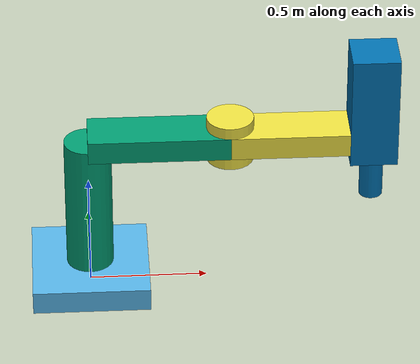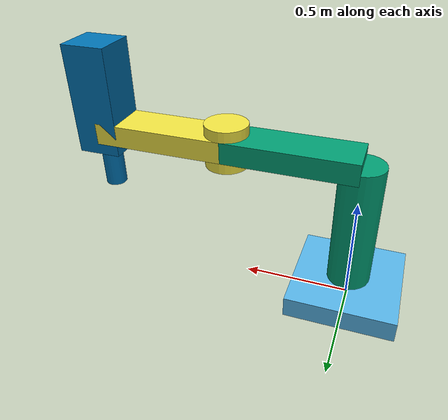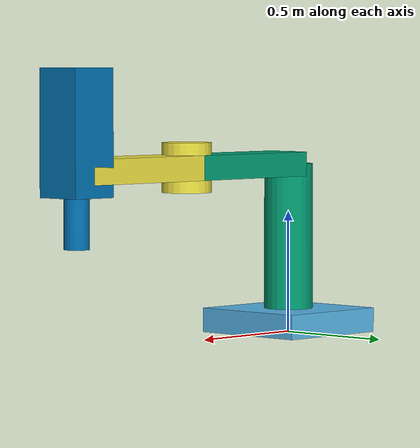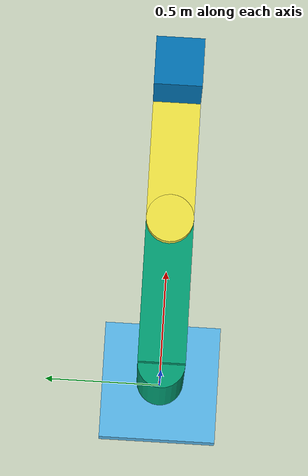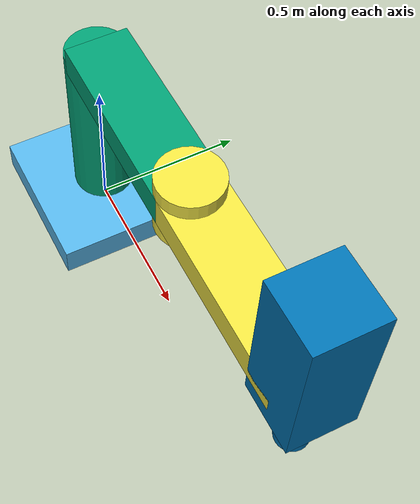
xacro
<?xml version="1.0"?>
<robot name="scara_robot" xmlns:xacro="http://www.ros.org/wiki/xacro">

    <xacro:property name="d1" value=".6" />
    <xacro:property name="a1" value=".6" />
    <xacro:property name="a2" value=".6" />
    <xacro:property name="d3" value=".3" />

    <xacro:property name="link3_limit" value=".3" />
    <xacro:property name="ee_r" value=".05" />
    <xacro:property name="ee_l" value="${d3}" />

    <xacro:property name="cyl_joint_r" value=".1" />
    <xacro:property name="cyl_joint_l" value=".2" />

    <xacro:property name="link_r" value=".1" />

    <xacro:property name="prismatic_link_a" value=".2" />

    <xacro:property name="base_link_l" value=".5" />
    <xacro:property name="base_link_w" value=".5" />
    <xacro:property name="base_link_h" value="0.1" />

    <xacro:property name="link1_l" value="${d1}" />
    <xacro:property name="link1_r" value="${link_r}" />
    <xacro:property name="link1_theta" value="0" />
    <xacro:property name="link1_d" value="${base_link_h}" />
    <xacro:property name="link1_a" value="0" />
    <xacro:property name="link1_alpha" value="0" />

    <xacro:property name="link1_arm_l" value="${a1}" />
    <xacro:property name="link1_arm_w" value="${link_r *2}" />
    <xacro:property name="link1_arm_h" value="${link_r}" />

    <xacro:property name="link2_l" value="${cyl_joint_l}" />
    <xacro:property name="link2_r" value="${cyl_joint_r}" />
    <xacro:property name="link2_theta" value="0" />
    <xacro:property name="link2_d" value="0" />
    <xacro:property name="link2_a" value="${a1}" />
    <xacro:property name="link2_alpha" value="0" />

    <xacro:property name="link2_arm_l" value="${a2}" />
    <xacro:property name="link2_arm_w" value="${link_r *2}" />
    <xacro:property name="link2_arm_h" value="${link_r}" />

    <xacro:property name="link3_arm_l" value="${prismatic_link_a}" />
    <xacro:property name="link3_arm_w" value="${prismatic_link_a}" />
    <xacro:property name="link3_arm_h" value="${prismatic_link_a + link3_limit}" />
    <xacro:property name="link3_theta" value="0" />
    <xacro:property name="link3_d" value="0" />
    <xacro:property name="link3_a" value="${a2}" />
    <xacro:property name="link3_alpha" value="0" />
    <xacro:property name="link3_limit_lower" value="0" />
    <xacro:property name="link3_limit_upper" value="${link3_limit}" />

    <xacro:property name="link4_l" value="${ee_l}" />
    <xacro:property name="link4_r" value="${ee_r}" />
    <xacro:property name="link4_theta" value="0" />
    <xacro:property name="link4_d" value="${-d3}" />
    <xacro:property name="link4_a" value="0" />
    <xacro:property name="link4_alpha" value="${pi}" />

    <xacro:macro name="inertial_box" params="mass x y z *origin">
        <inertial>
            <xacro:insert_block name="origin"/>
            <mass value="${mass}" />
            <inertia ixx="${(1/12) * mass * (y*y+z*z)}" ixy="0.0" ixz="0.0"
                    iyy="${(1/12) * mass * (x*x+z*z)}" iyz="0.0"
                    izz="${(1/12) * mass * (x*x+y*y)}" />
        </inertial>
    </xacro:macro>

    <xacro:macro name="inertial_cylinder" params="mass length radius *origin">
        <inertial>
            <xacro:insert_block name="origin"/>
            <mass value="${mass}" />
            <inertia ixx="${(1/12) * mass * (3*radius*radius + length*length)}" ixy="0.0" ixz="0.0"
                    iyy="${(1/12) * mass * (3*radius*radius + length*length)}" iyz="0.0"
                    izz="${(1/2) * mass * (radius*radius)}" />
        </inertial>
    </xacro:macro>

    <link name="world_link"/>

    <joint name="world_to_base" type="fixed">
    <parent link="world_link"/>
    <child link="base_link"/>
    <origin xyz="0 0 0" rpy="0 0 0"/>
    </joint>

    <link name="base_link">
        <visual>
            <origin rpy="0 0 0" xyz="0 0 ${base_link_h/2}" />
            <geometry>
                <box size="${base_link_l} ${base_link_w} ${base_link_h}" />
            </geometry>
        </visual>
        <collision>
            <origin rpy="0 0 0" xyz="0 0 ${base_link_h/2}" />
            <geometry>
                <box size="${base_link_l} ${base_link_w} ${base_link_h}" />
            </geometry>
        </collision>
        <xacro:inertial_box mass="10" x="${base_link_l}" y="${base_link_w}" z="${base_link_h}">
            <origin rpy="0 0 0" xyz="0 0 ${base_link_h/2}" />
        </xacro:inertial_box>
    </link>

    <joint name="joint1" type="revolute">
        <parent link="base_link" />
        <child link="link1" />
        <origin rpy="0 0 0" xyz="0 0 ${link1_d}" />
        <axis xyz="0 0 1" />
        <limit lower="${-5*pi/6}" upper="${5*pi/6}" effort="100" velocity="5.0" />
        <dynamics damping="0.1" friction="0.1"/>
    </joint>

    <link name="link1">
        <visual>
            <origin rpy="0 0 0" xyz="0 0 ${link1_l/2}" />
            <geometry>
                <cylinder length="${link1_l}" radius="${link1_r}" />
            </geometry>
        </visual>
        <collision>
            <origin rpy="0 0 0" xyz="0 0 ${link1_l/2}" />
            <geometry>
                <cylinder length="${link1_l}" radius="${link1_r}" />
            </geometry>
        </collision>
        <xacro:inertial_cylinder mass="10" length="${link1_l}" radius="${link1_r}">
            <origin rpy="0 0 0" xyz="0 0 ${link1_l/2}" />
        </xacro:inertial_cylinder>

         <visual>
            <origin rpy="0 0 0" xyz="${link1_arm_l/2} 0 ${link1_l}" />
            <geometry>
                <box size="${link1_arm_l} ${link1_arm_w} ${link1_arm_h}" />
            </geometry>
        </visual>
        <collision>
            <origin rpy="0 0 0" xyz="${link1_arm_l/2} 0 ${link1_l}" />
            <geometry>
                <box size="${link1_arm_l - cyl_joint_r * 2} ${link1_arm_w} ${link1_arm_h}" />
            </geometry>
        </collision>
        <xacro:inertial_box mass="0.01" x="${link1_arm_l}" y="${link1_arm_w}" z="${link1_arm_h}">
            <origin rpy="0 0 0" xyz="${link1_arm_l/2} 0 0" />
        </xacro:inertial_box>
    </link>

    <link name="link2">
        <visual>
            <origin rpy="0 0 0" xyz="0 0 0" />
            <geometry>
                <cylinder length="${link2_l}" radius="${link2_r}" />
            </geometry>
        </visual>
        <collision>
            <origin rpy="0 0 0" xyz="0 0 0" />
            <geometry>
                <cylinder length="${link2_l}" radius="${link2_r}" />
            </geometry>
        </collision>
        <xacro:inertial_cylinder mass="0.01" length="${link2_l}" radius="${link2_r}">
            <origin rpy="0 0 0" xyz="0 0 0" />
        </xacro:inertial_cylinder>

        <visual>
            <origin rpy="0 0 0" xyz="${link2_arm_l/2} 0 0" />
            <geometry>
                <box size="${link2_arm_l} ${link2_arm_w} ${link2_arm_h}" />
            </geometry>
        </visual>
        <collision>
            <origin rpy="0 0 0" xyz="${link2_arm_l/2} 0 0" />
            <geometry>
                <box size="${link2_arm_l - prismatic_link_a} ${link2_arm_w} ${link2_arm_h}" />
            </geometry>
        </collision>
        <xacro:inertial_box mass="0.01" x="${link2_arm_l}" y="${link2_arm_w}" z="${link2_arm_h}">
            <origin rpy="0 0 0" xyz="${link2_arm_l/2} 0 0" />
        </xacro:inertial_box>
    </link>

    <joint name="joint2" type="revolute">
        <parent link="link1" />
        <child link="link2" />
        <origin rpy="0 0 0" xyz="${a1} 0 ${d1}" />
        <limit lower="${-pi/2}" upper="${pi/2}" effort="100" velocity="1.0" />
        <axis xyz="0 0 1" />
    </joint>

    <link name="link3">
        <visual>
            <origin rpy="0 0 0" xyz="0 0 ${link3_arm_h/2 - prismatic_link_a/2}" />
            <geometry>
                <box size="${link3_arm_l} ${link3_arm_w} ${link3_arm_h}" />
            </geometry>
        </visual>
        <collision>
            <origin rpy="0 0 0" xyz="0 0 ${link3_arm_h/2 - prismatic_link_a/2}" />
            <geometry>
                <box size="${link3_arm_l} ${link3_arm_w} ${link3_arm_h}" />
            </geometry>
        </collision>
        <xacro:inertial_box mass="0.01" x="${link3_arm_l}" y="${link3_arm_w}" z="${link3_arm_h}">
            <origin rpy="0 0 0" xyz="0 0 ${link3_arm_h/2 - prismatic_link_a/2}" />
        </xacro:inertial_box>

        <visual>
            <origin rpy="0 0 0" xyz="0 0 ${-link4_l/2}" />
            <geometry>
                <cylinder length="${link4_l}" radius="${link4_r}" />
            </geometry>
        </visual>
        <collision>
            <origin rpy="0 0 0" xyz="0 0 ${-(link4_l - prismatic_link_a/2)/2}" />
            <geometry>
                <cylinder length="${link4_l - prismatic_link_a/2}" radius="${link4_r}" />
            </geometry>
        </collision>
        <xacro:inertial_cylinder mass="0.01" length="${link4_l}" radius="${link4_r}">
            <origin rpy="0 0 0" xyz="0 0 ${-link4_l/2}" />
        </xacro:inertial_cylinder>
    </link>

    <joint name="joint3" type="prismatic">
        <parent link="link2" />
        <child link="link3" />
        <origin rpy="0 0 0" xyz="${link3_a} 0 0" />
        <limit lower="${link3_limit_lower}" upper="${link3_limit_upper}" effort="100" velocity="5" />
        <axis xyz="0 0 -1" />
    </joint>

     <!-- Use for GUI control -->

    <gazebo>
        <plugin
            filename="gz-sim-joint-state-publisher-system"
            name="gz::sim::systems::JointStatePublisher">
            <topic>/joint_states</topic>
        </plugin>

        <plugin
            filename="gz-sim-pose-publisher-system"
            name="gz::sim::systems::PosePublisher">
            <publish_link_pose>true</publish_link_pose>
            <publish_model_pose>true</publish_model_pose>
            <publish_sensor_pose>false</publish_sensor_pose>
            <publish_collision_pose>false</publish_collision_pose>
            <publish_visual_pose>false</publish_visual_pose>
            <publish_nested_model_pose>false</publish_nested_model_pose>
            <use_pose_vector_msg>true</use_pose_vector_msg>
        </plugin>

        <plugin
            filename="ignition-gazebo-joint-trajectory-controller-system"
            name="ignition::gazebo::systems::JointTrajectoryController">

            <topic>/model/scara_robot/joint_trajectory</topic>

            <joint_name>joint1</joint_name>
            <joint_name>joint2</joint_name>
            <joint_name>joint3</joint_name>

            <initial_position>0.0</initial_position>
            <initial_position>0.0</initial_position>
            <initial_position>0.0</initial_position>

            <position_p_gain>20</position_p_gain>
            <position_p_gain>20</position_p_gain>
            <position_p_gain>20</position_p_gain>

            <position_i_gain>0.0</position_i_gain>
            <position_i_gain>0.0</position_i_gain>
            <position_i_gain>0.0</position_i_gain>

            <position_d_gain>1.0</position_d_gain>
            <position_d_gain>1.0</position_d_gain>
            <position_d_gain>1.0</position_d_gain>

            <position_i_min>-1</position_i_min>
            <position_i_min>-1</position_i_min>
            <position_i_min>-1</position_i_min>

            <position_i_max>1</position_i_max>
            <position_i_max>1</position_i_max>
            <position_i_max>1</position_i_max>

            <position_cmd_min>-50</position_cmd_min>
            <position_cmd_min>-50</position_cmd_min>
            <position_cmd_min>-50</position_cmd_min>

            <position_cmd_max>50</position_cmd_max>
            <position_cmd_max>50</position_cmd_max>
            <position_cmd_max>50</position_cmd_max>
        </plugin>
    </gazebo>
</robot>
